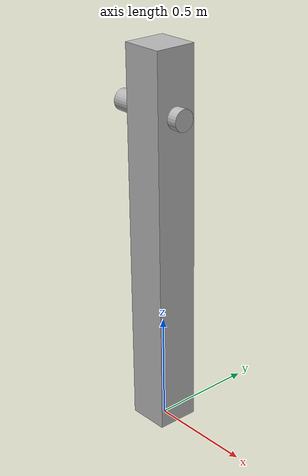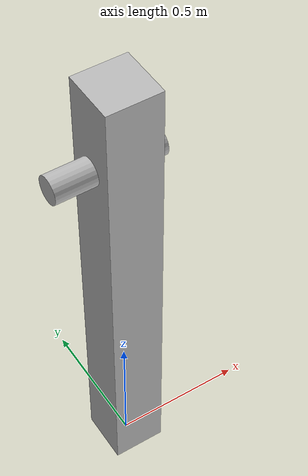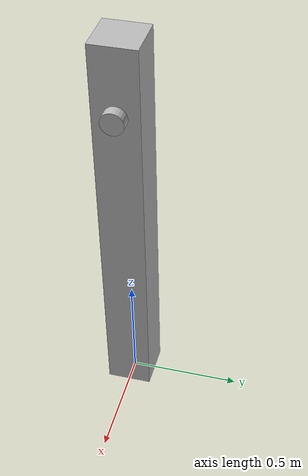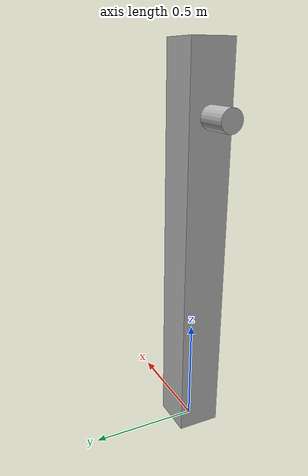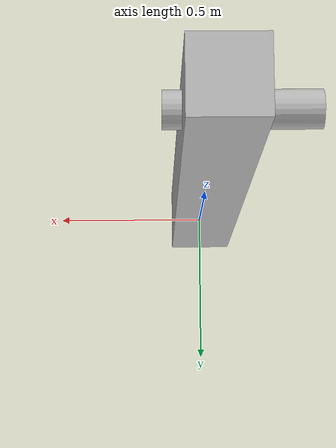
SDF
<?xml version='1.0' ?>
<sdf version='1.6'>
  <world name='test_world'>
    <model name='test_model'>
      <link name='body'>
        <inertial>
          <pose>0 0 0.9 0 0 0</pose>
          <mass>60.0</mass>
        </inertial>
        <visual name='vis_body'>
          <pose>0 0 0.9 0 0 0</pose>
          <geometry>
            <box>
              <size>0.2 0.2 1.8</size>
            </box>
          </geometry>
        </visual>
        <collision name='col_body'>
          <pose>0 0 0.9 0 0 0</pose>
          <geometry>
            <box>
              <size>0.2 0.2 1.8</size>
            </box>
          </geometry>
        </collision>
      </link>
      <link name='arm'>
        <pose>0 0 1.5 -1.5708 0 0</pose>
        <inertial>
          <mass>2.0</mass>
        </inertial>
        <visual name='vis_arm'>
          <pose>-0.05 0 0 0 1.5708 0</pose>
          <geometry>
            <cylinder>
              <radius>0.05</radius>
              <length>0.4</length>
            </cylinder>
          </geometry>
        </visual>
        <collision name='col_arm'>
          <pose>-0.05 0 0 0 1.5708 0</pose>
          <geometry>
            <cylinder>
              <radius>0.05</radius>
              <length>0.4</length>
            </cylinder>
          </geometry>
        </collision>
      </link>
      <joint name='shoulder' type='revolute'>
        <parent>body</parent>
        <child>arm</child>
        <axis>
          <xyz>0 0 1</xyz>
        </axis>
      </joint>
    </model>
  </world>
</sdf>
